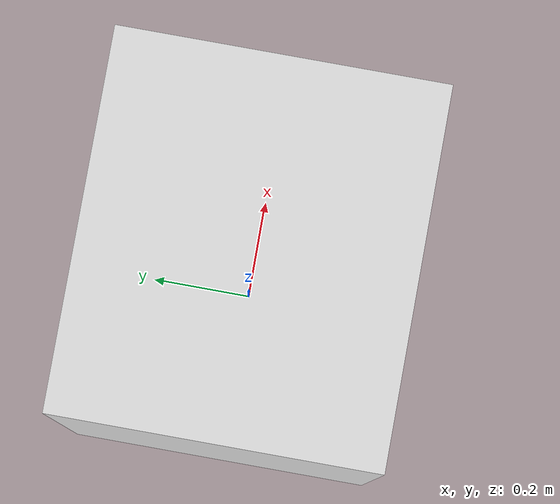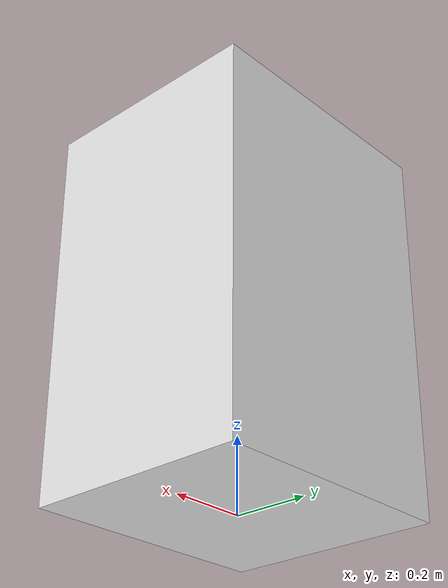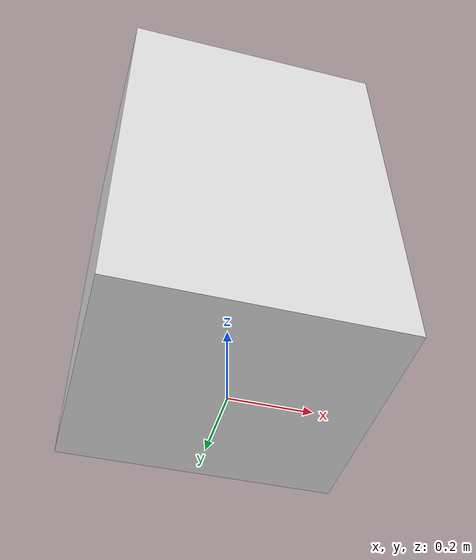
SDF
<?xml version="1.0"?>
<sdf version="1.6">
  <model name="rgo2015/fridge">
    <link name="1_link">
      <collision name="1_col">
        <geometry>
          <box>
            <size>0.69 0.6 1.02</size>
          </box>
        </geometry>
      </collision>
      <visual name="1_vis">
        <geometry>
          <box>
            <size>0.69 0.6 1.02</size>
          </box>
        </geometry>
        <material>
          <ambient>0.9 0.9 0.9 1</ambient>
        </material>
      </visual>
      <pose>0.0 0.0 0.51 0 0 0</pose>
    </link>
    <static>true</static>
  </model>
</sdf>
